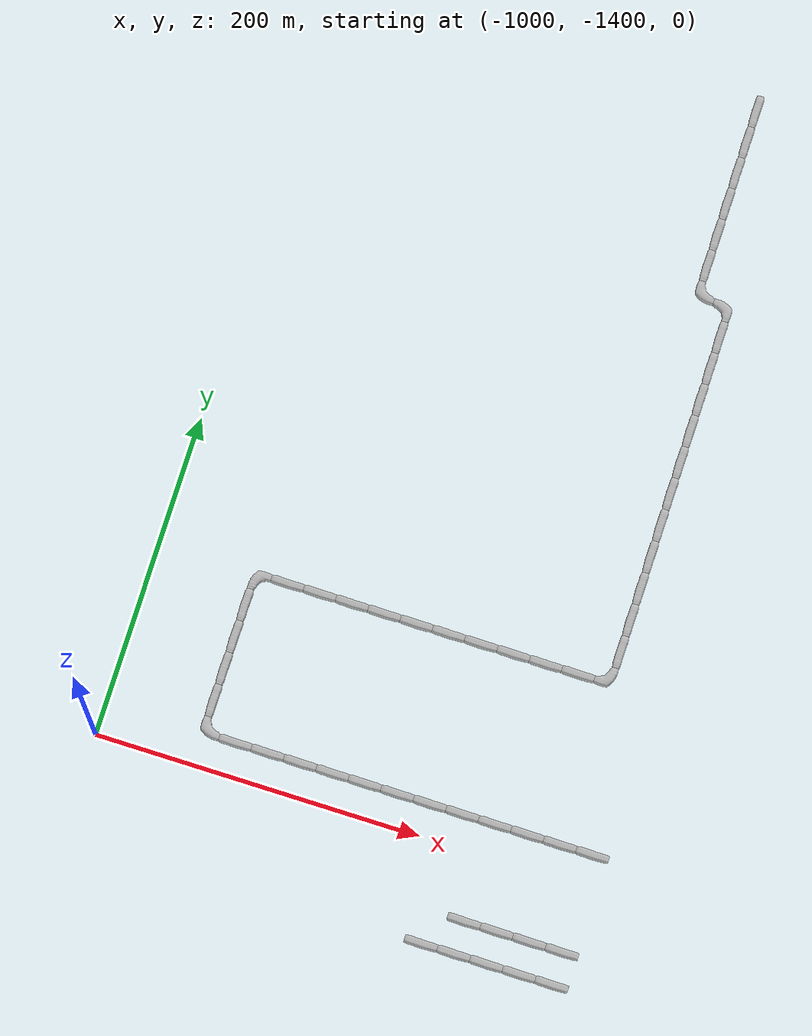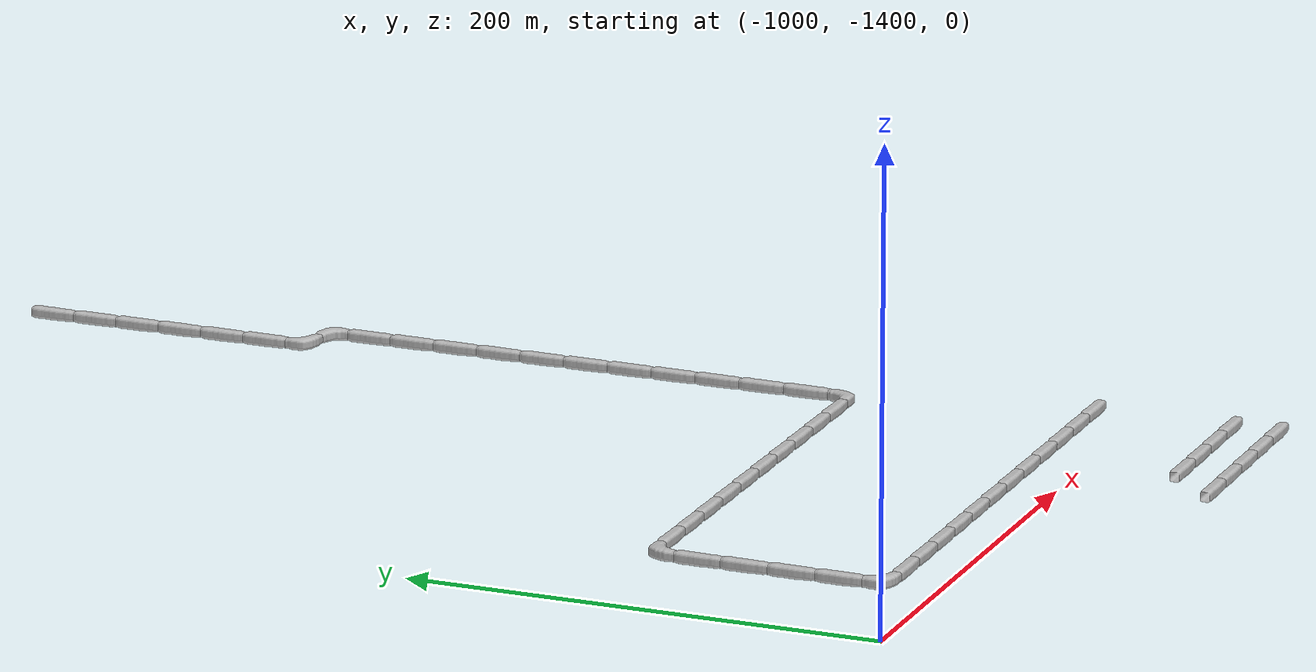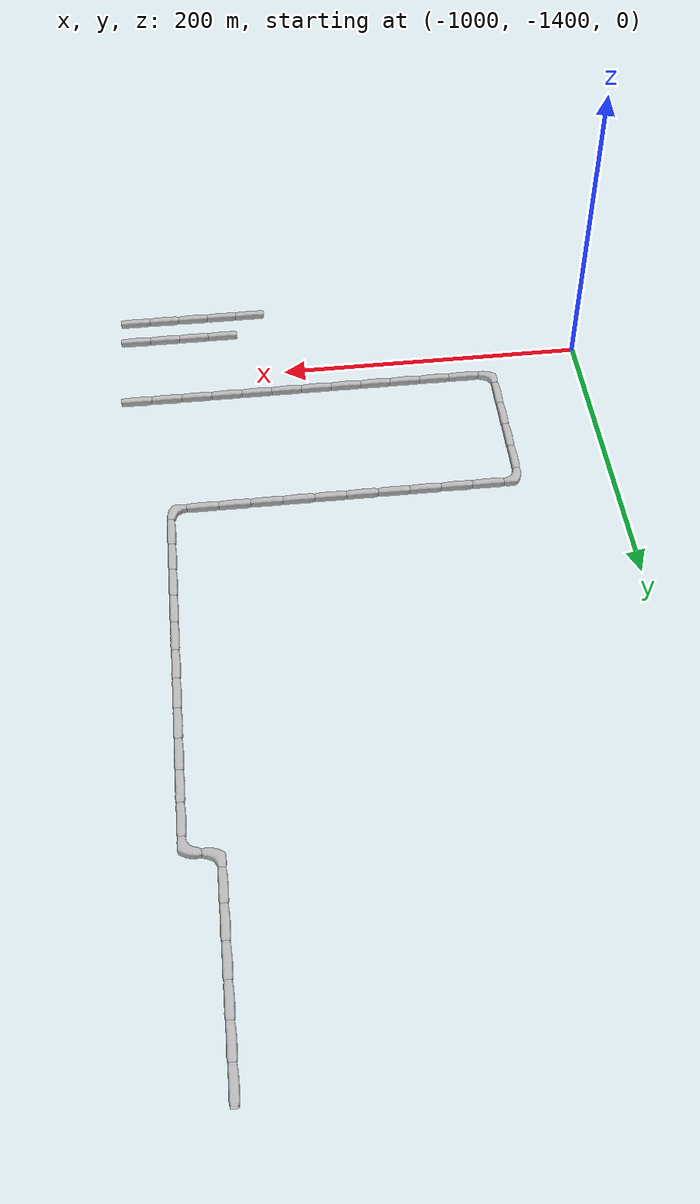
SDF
<sdf version="1.6">
 <world name="cave_32000_16">
  <include>
   <static>true</static>
   <name>cave_-37_-46</name>
   <pose>-740 -920 0 0 0 0.0</pose>
   <uri>model://cave_straight_20m</uri>
  </include>
  <include>
   <static>true</static>
   <name>cave_-37_-47</name>
   <pose>-740 -940 0 0 0 0.0</pose>
   <uri>model://cave_straight_20m</uri>
  </include>
  <include>
   <static>true</static>
   <name>cave_-37_-48</name>
   <pose>-740 -960 0 0 0 0.0</pose>
   <uri>model://cave_straight_20m</uri>
  </include>
  <include>
   <static>true</static>
   <name>cave_-37_-49</name>
   <pose>-740 -980 0 0 0 0.0</pose>
   <uri>model://cave_straight_20m</uri>
  </include>
  <include>
   <static>true</static>
   <name>cave_-37_-50</name>
   <pose>-740 -1000 0 0 0 0.0</pose>
   <uri>model://cave_straight_20m</uri>
  </include>
  <include>
   <static>true</static>
   <name>cave_-37_-51</name>
   <pose>-740 -1020 0 0 0 0.0</pose>
   <uri>model://cave_straight_20m</uri>
  </include>
  <include>
   <static>true</static>
   <name>cave_-37_-52</name>
   <pose>-740 -1040 0 0 0 0.0</pose>
   <uri>model://cave_L_20m</uri>
  </include>
  <include>
   <static>true</static>
   <name>cave_-36_-52</name>
   <pose>-720 -1040 0 0 0 3.141592653589793</pose>
   <uri>model://cave_L_20m</uri>
  </include>
  <include>
   <static>true</static>
   <name>cave_-36_-53</name>
   <pose>-720 -1060 0 0 0 0.0</pose>
   <uri>model://cave_straight_20m</uri>
  </include>
  <include>
   <static>true</static>
   <name>cave_-36_-54</name>
   <pose>-720 -1080 0 0 0 0.0</pose>
   <uri>model://cave_straight_20m</uri>
  </include>
  <include>
   <static>true</static>
   <name>cave_-36_-55</name>
   <pose>-720 -1100 0 0 0 0.0</pose>
   <uri>model://cave_straight_20m</uri>
  </include>
  <include>
   <static>true</static>
   <name>cave_-36_-56</name>
   <pose>-720 -1120 0 0 0 0.0</pose>
   <uri>model://cave_straight_20m</uri>
  </include>
  <include>
   <static>true</static>
   <name>cave_-36_-57</name>
   <pose>-720 -1140 0 0 0 0.0</pose>
   <uri>model://cave_straight_20m</uri>
  </include>
  <include>
   <static>true</static>
   <name>cave_-36_-58</name>
   <pose>-720 -1160 0 0 0 0.0</pose>
   <uri>model://cave_straight_20m</uri>
  </include>
  <include>
   <static>true</static>
   <name>cave_-36_-59</name>
   <pose>-720 -1180 0 0 0 0.0</pose>
   <uri>model://cave_straight_20m</uri>
  </include>
  <include>
   <static>true</static>
   <name>cave_-36_-60</name>
   <pose>-720 -1200 0 0 0 0.0</pose>
   <uri>model://cave_straight_20m</uri>
  </include>
  <include>
   <static>true</static>
   <name>cave_-36_-61</name>
   <pose>-720 -1220 0 0 0 0.0</pose>
   <uri>model://cave_straight_20m</uri>
  </include>
  <include>
   <static>true</static>
   <name>cave_-36_-62</name>
   <pose>-720 -1240 0 0 0 0.0</pose>
   <uri>model://cave_straight_20m</uri>
  </include>
  <include>
   <static>true</static>
   <name>cave_-36_-63</name>
   <pose>-720 -1260 0 0 0 0.0</pose>
   <uri>model://cave_straight_20m</uri>
  </include>
  <include>
   <static>true</static>
   <name>cave_-36_-64</name>
   <pose>-720 -1280 0 0 0 1.5707963267948966</pose>
   <uri>model://cave_L_20m</uri>
  </include>
  <include>
   <static>true</static>
   <name>cave_-37_-64</name>
   <pose>-740 -1280 0 0 0 1.5707963267948966</pose>
   <uri>model://cave_straight_20m</uri>
  </include>
  <include>
   <static>true</static>
   <name>cave_-38_-64</name>
   <pose>-760 -1280 0 0 0 1.5707963267948966</pose>
   <uri>model://cave_straight_20m</uri>
  </include>
  <include>
   <static>true</static>
   <name>cave_-39_-64</name>
   <pose>-780 -1280 0 0 0 1.5707963267948966</pose>
   <uri>model://cave_straight_20m</uri>
  </include>
  <include>
   <static>true</static>
   <name>cave_-40_-64</name>
   <pose>-800 -1280 0 0 0 1.5707963267948966</pose>
   <uri>model://cave_straight_20m</uri>
  </include>
  <include>
   <static>true</static>
   <name>cave_-41_-64</name>
   <pose>-820 -1280 0 0 0 1.5707963267948966</pose>
   <uri>model://cave_straight_20m</uri>
  </include>
  <include>
   <static>true</static>
   <name>cave_-42_-64</name>
   <pose>-840 -1280 0 0 0 1.5707963267948966</pose>
   <uri>model://cave_straight_20m</uri>
  </include>
  <include>
   <static>true</static>
   <name>cave_-43_-64</name>
   <pose>-860 -1280 0 0 0 1.5707963267948966</pose>
   <uri>model://cave_straight_20m</uri>
  </include>
  <include>
   <static>true</static>
   <name>cave_-44_-64</name>
   <pose>-880 -1280 0 0 0 1.5707963267948966</pose>
   <uri>model://cave_straight_20m</uri>
  </include>
  <include>
   <static>true</static>
   <name>cave_-45_-64</name>
   <pose>-900 -1280 0 0 0 1.5707963267948966</pose>
   <uri>model://cave_straight_20m</uri>
  </include>
  <include>
   <static>true</static>
   <name>cave_-46_-64</name>
   <pose>-920 -1280 0 0 0 1.5707963267948966</pose>
   <uri>model://cave_straight_20m</uri>
  </include>
  <include>
   <static>true</static>
   <name>cave_-47_-64</name>
   <pose>-940 -1280 0 0 0 -1.5707963267948966</pose>
   <uri>model://cave_L_20m</uri>
  </include>
  <include>
   <static>true</static>
   <name>cave_-47_-65</name>
   <pose>-940 -1300 0 0 0 0.0</pose>
   <uri>model://cave_straight_20m</uri>
  </include>
  <include>
   <static>true</static>
   <name>cave_-47_-66</name>
   <pose>-940 -1320 0 0 0 0.0</pose>
   <uri>model://cave_straight_20m</uri>
  </include>
  <include>
   <static>true</static>
   <name>cave_-47_-67</name>
   <pose>-940 -1340 0 0 0 0.0</pose>
   <uri>model://cave_straight_20m</uri>
  </include>
  <include>
   <static>true</static>
   <name>cave_-47_-68</name>
   <pose>-940 -1360 0 0 0 0.0</pose>
   <uri>model://cave_straight_20m</uri>
  </include>
  <include>
   <static>true</static>
   <name>cave_-47_-69</name>
   <pose>-940 -1380 0 0 0 0.0</pose>
   <uri>model://cave_L_20m</uri>
  </include>
  <include>
   <static>true</static>
   <name>cave_-46_-69</name>
   <pose>-920 -1380 0 0 0 1.5707963267948966</pose>
   <uri>model://cave_straight_20m</uri>
  </include>
  <include>
   <static>true</static>
   <name>cave_-45_-69</name>
   <pose>-900 -1380 0 0 0 1.5707963267948966</pose>
   <uri>model://cave_straight_20m</uri>
  </include>
  <include>
   <static>true</static>
   <name>cave_-44_-69</name>
   <pose>-880 -1380 0 0 0 1.5707963267948966</pose>
   <uri>model://cave_straight_20m</uri>
  </include>
  <include>
   <static>true</static>
   <name>cave_-43_-69</name>
   <pose>-860 -1380 0 0 0 1.5707963267948966</pose>
   <uri>model://cave_straight_20m</uri>
  </include>
  <include>
   <static>true</static>
   <name>cave_-42_-69</name>
   <pose>-840 -1380 0 0 0 1.5707963267948966</pose>
   <uri>model://cave_straight_20m</uri>
  </include>
  <include>
   <static>true</static>
   <name>cave_-41_-69</name>
   <pose>-820 -1380 0 0 0 1.5707963267948966</pose>
   <uri>model://cave_straight_20m</uri>
  </include>
  <include>
   <static>true</static>
   <name>cave_-40_-69</name>
   <pose>-800 -1380 0 0 0 1.5707963267948966</pose>
   <uri>model://cave_straight_20m</uri>
  </include>
  <include>
   <static>true</static>
   <name>cave_-39_-69</name>
   <pose>-780 -1380 0 0 0 1.5707963267948966</pose>
   <uri>model://cave_straight_20m</uri>
  </include>
  <include>
   <static>true</static>
   <name>cave_-38_-69</name>
   <pose>-760 -1380 0 0 0 1.5707963267948966</pose>
   <uri>model://cave_straight_20m</uri>
  </include>
  <include>
   <static>true</static>
   <name>cave_-37_-69</name>
   <pose>-740 -1380 0 0 0 1.5707963267948966</pose>
   <uri>model://cave_straight_20m</uri>
  </include>
  <include>
   <static>true</static>
   <name>cave_-36_-69</name>
   <pose>-720 -1380 0 0 0 1.5707963267948966</pose>
   <uri>model://cave_straight_20m</uri>
  </include>
  <include>
   <static>true</static>
   <name>cave_-35_-69</name>
   <pose>-700 -1380 0 0 0 1.5707963267948966</pose>
   <uri>model://cave_straight_20m</uri>
  </include>
  <include>
   <static>true</static>
   <name>cave_-35_-73</name>
   <pose>-700 -1460 0 0 0 1.5707963267948966</pose>
   <uri>model://cave_straight_20m</uri>
  </include>
  <include>
   <static>true</static>
   <name>cave_-36_-73</name>
   <pose>-720 -1460 0 0 0 1.5707963267948966</pose>
   <uri>model://cave_straight_20m</uri>
  </include>
  <include>
   <static>true</static>
   <name>cave_-37_-73</name>
   <pose>-740 -1460 0 0 0 1.5707963267948966</pose>
   <uri>model://cave_straight_20m</uri>
  </include>
  <include>
   <static>true</static>
   <name>cave_-38_-73</name>
   <pose>-760 -1460 0 0 0 1.5707963267948966</pose>
   <uri>model://cave_straight_20m</uri>
  </include>
  <include>
   <static>true</static>
   <name>cave_-39_-73</name>
   <pose>-780 -1460 0 0 0 1.5707963267948966</pose>
   <uri>model://cave_straight_20m</uri>
  </include>
  <include>
   <static>true</static>
   <name>cave_-35_-72</name>
   <pose>-700 -1440 0 0 0 1.5707963267948966</pose>
   <uri>model://cave_straight_20m</uri>
  </include>
  <include>
   <static>true</static>
   <name>cave_-36_-72</name>
   <pose>-720 -1440 0 0 0 1.5707963267948966</pose>
   <uri>model://cave_straight_20m</uri>
  </include>
  <include>
   <static>true</static>
   <name>cave_-37_-72</name>
   <pose>-740 -1440 0 0 0 1.5707963267948966</pose>
   <uri>model://cave_straight_20m</uri>
  </include>
  <include>
   <static>true</static>
   <name>cave_-38_-72</name>
   <pose>-760 -1440 0 0 0 1.5707963267948966</pose>
   <uri>model://cave_straight_20m</uri>
  </include>
 </world>
</sdf>
